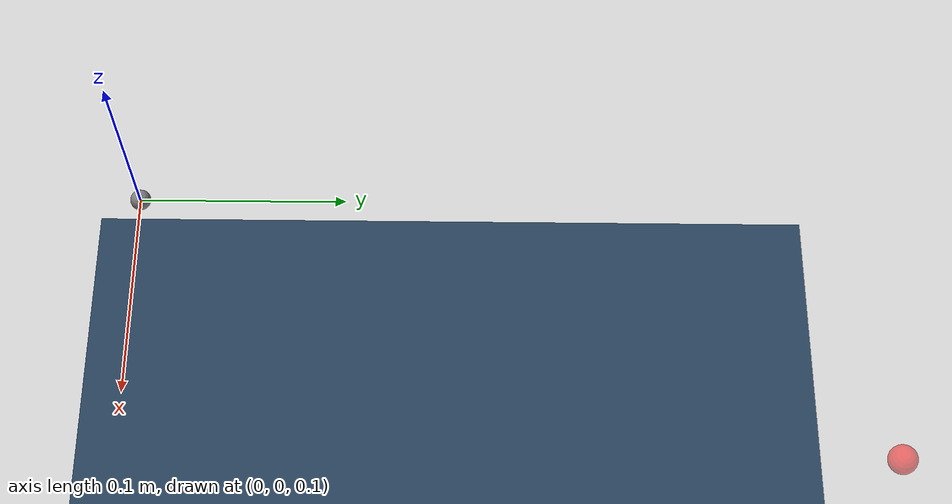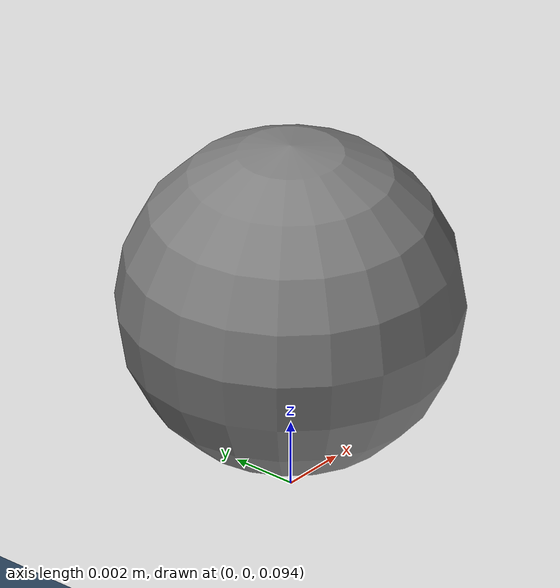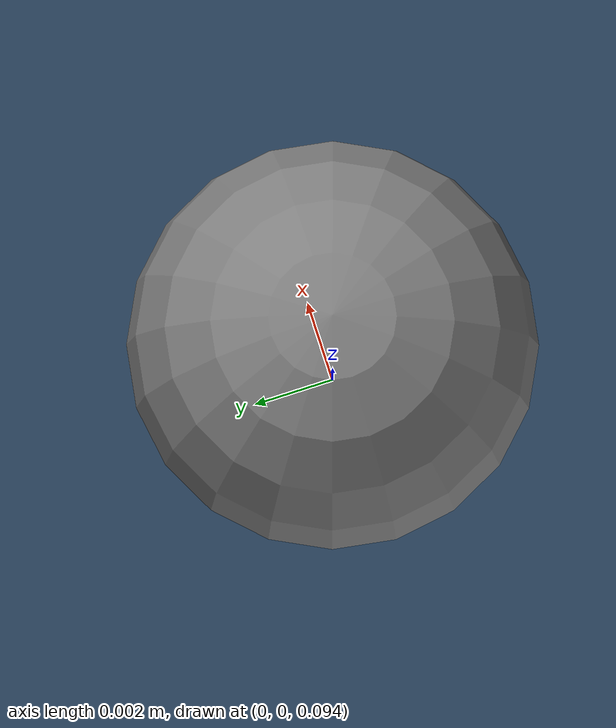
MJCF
<?xml version="1.0" encoding="utf-8"?>
<mujoco model="scene1">
  <compiler angle="radian" balanceinertia="true" inertiafromgeom="true"
    meshdir="/home/yinglong/Documents/research/task_motion_planning/infrastructure/motoman_ws/src/pracsys_vbnpm/"
    texturedir="/home/yinglong/Documents/research/task_motion_planning/infrastructure/motoman_ws/src/pracsys_vbnpm/"
    autolimits="true"/>

  <asset>
    <texture builtin="checker" height="512" name="grid" rgb1="0.1 0.2 0.3" rgb2="0.2 0.3 0.4" type="2d" width="512"/>
    <material name="grid" emission="1" reflectance="0" shininess="0" specular="0" texrepeat="0.5 0.5" texture="grid" texuniform="true"/>
  </asset>
  <worldbody>
    <geom condim="3" material="grid" name="floor" size="2 2 0.05" type="plane"/>
    <geom conaffinity="0" contype="0" group="1" material="grid" name="floor_vis" size="2 2 0.05" type="plane"/>
    <light castshadow="false" diffuse="1 1 1" dir="0 0 -1" directional="true" pos="-0.5 0.5 3"/>

    <body name="ee_position" pos="0 0 0.1" gravcomp="1">
      <camera name="cam0" pos="0 -0.3 0.3" xyaxes="1 0 0 0 0.7 0.7"/>
      <joint name="ee_position_x" type="slide"  pos="0 0 0" axis="1 0 0" ref="0" />
      <joint name="ee_position_y" type="slide"  pos="0 0 0" axis="0 1 0" ref="0" />
      <joint name="ee_position_z" type="slide"  pos="0 0 0" axis="0 0 1" ref="0.1" />
      <geom name="ee_position" type="sphere" size=".005" mass="0.05"/>
      <site name="tip" pos="0 0 0" size="0.001"/>
    </body>

    <body name="ee_position_goal" pos="0.2 0.3 0.3" gravcomp="1">
      <geom name="ee_position_goal" type="sphere" size=".005" mass="10" contype="0" conaffinity="0" rgba="1 0 0 .5"/>
    </body>

  </worldbody>

  <actuator>

    <velocity name="ee_position_x_vel" joint="ee_position_x" kv="10" ctrllimited="true" ctrlrange="-1.3 1.3"/>
    <velocity name="ee_position_y_vel" joint="ee_position_y" kv="10" ctrllimited="true" ctrlrange="-1.3 1.3"/>
    <velocity name="ee_position_z_vel" joint="ee_position_z" kv="10" ctrllimited="true" ctrlrange="-1.3 1.3"/>

    <general name="ee_position_x_pos" joint="ee_position_x" gainprm="100" ctrllimited="true" ctrlrange="-0.05 0.05"/>
    <general name="ee_position_y_pos" joint="ee_position_y" gainprm="100" ctrllimited="true" ctrlrange="-0.05 0.05"/>
    <general name="ee_position_z_pos" joint="ee_position_z" gainprm="100" ctrllimited="true" ctrlrange="-0.05 0.05"/>

  </actuator>

  <custom>
    <!-- agent -->
    <numeric name="agent_planner" data="2" />
    <numeric name="agent_horizon" data="10" />
    <numeric name="agent_timestep" data="0.002" />
    <numeric name="agent_integrator" data="2" />
    <numeric name="agent_policy_width" data="0.0015" />
    <numeric name="sampling_spline_points" data="15" />
    <numeric name="sampling_exploration" data="0.1" />
    <numeric name="sampling_trajectories" data="10" />
    <numeric name="gradient_spline_points" data="15" />

    <!-- estimator -->
    <numeric name="estimator" data="0" />
    <numeric name="estimator_sensor_start" data="2" />
    <numeric name="estimator_number_sensor" data="8" />
    <numeric name="estimator_timestep" data="0.0075" />
    <numeric name="batch_configuration_length" data="3" />
    <numeric name="batch_scale_prior" data="1.0e-3" />
  </custom>

  <statistic extent="1.5" center="0.1 0.2 0.3"/>

  <sensor>
    <!-- Residual 0-2: distance from robot hand to the object -->

    <user name="error robot position" dim="3"/>

  </sensor>

</mujoco>
